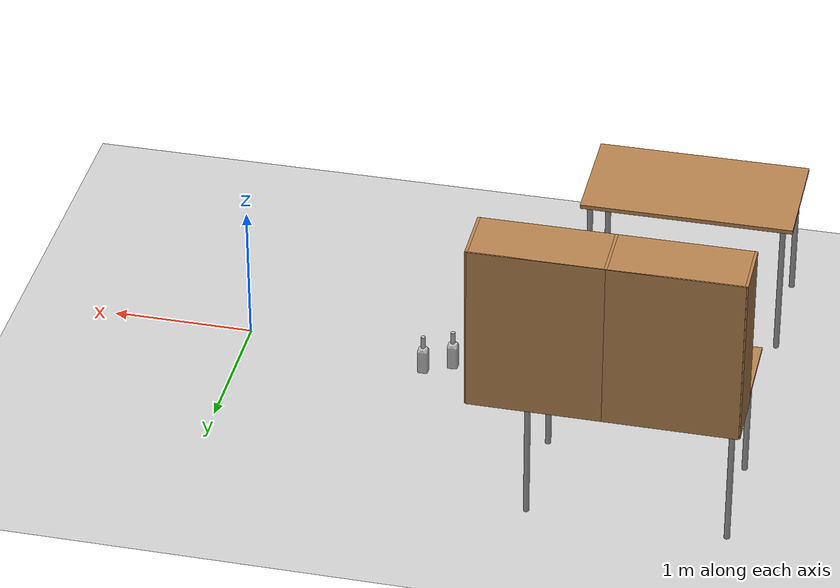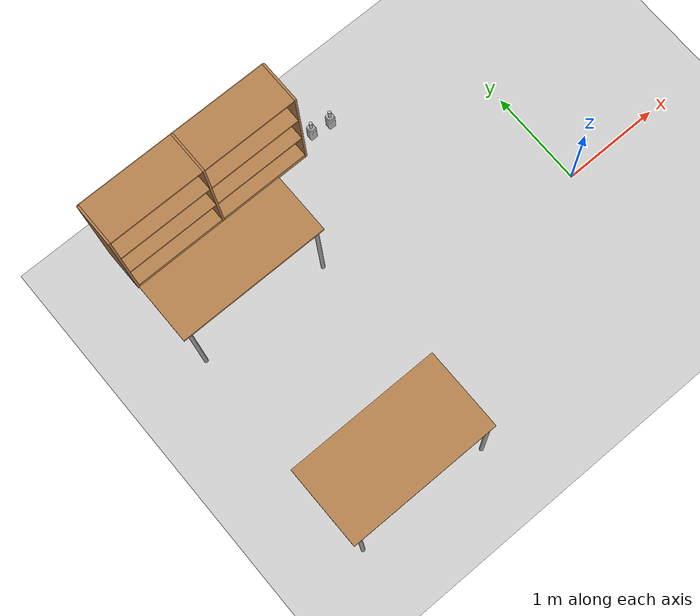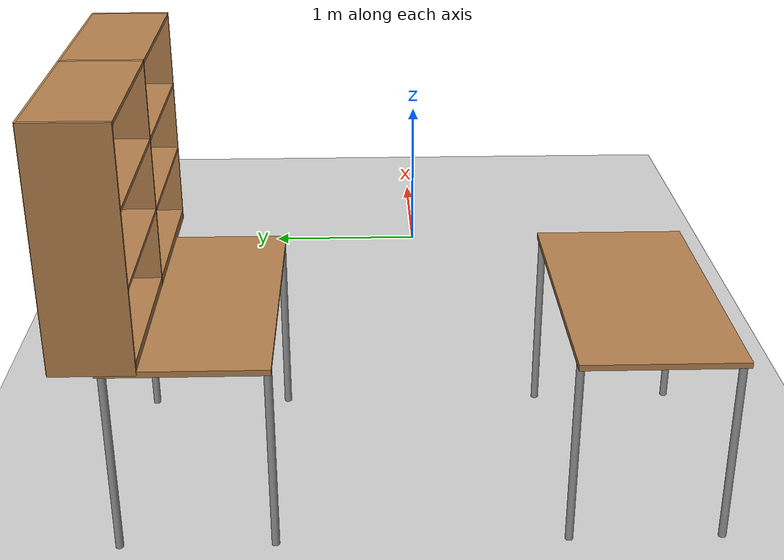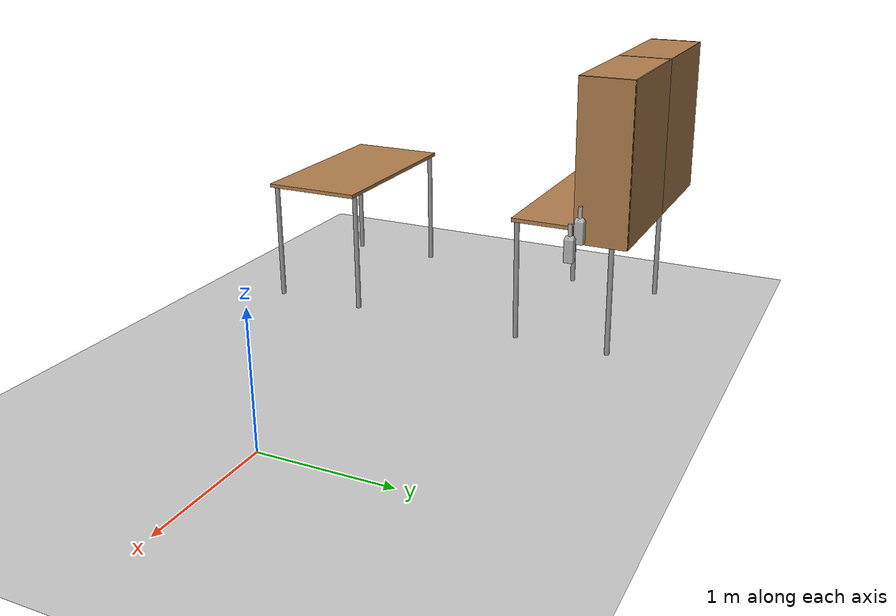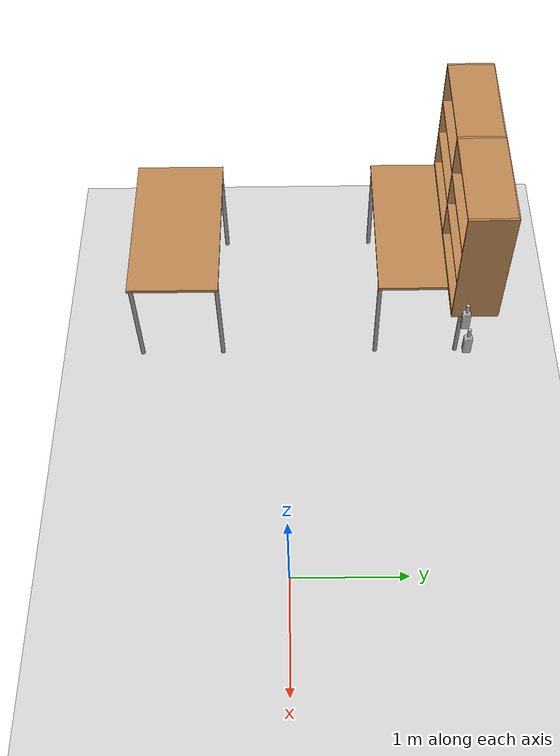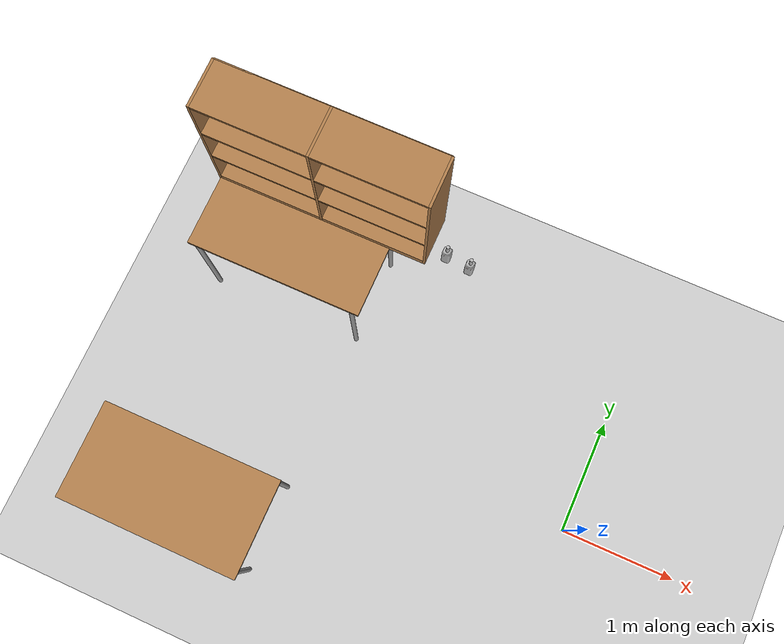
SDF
<sdf version="1.6">
 <world name="default">
  <model name="ground_plane">
   <static>1</static>
   <link name="link">
    <collision name="collision">
     <geometry><plane><normal>0 0 1</normal><size>100 100</size></plane></geometry>
     <surface>
      <contact><collide_bitmask>65535</collide_bitmask></contact>
      <friction><ode><mu>100</mu><mu2>50</mu2></ode></friction>
     </surface>
    </collision>
    <visual name="visual">
     <cast_shadows>0</cast_shadows>
     <geometry><plane><normal>0 0 1</normal><size>100 100</size></plane></geometry>
     <material>
      <script><uri>file://media/materials/scripts/gazebo.material</uri><name>Gazebo/Grey</name></script>
     </material>
    </visual>
   </link>
  </model>
  <model name="table">
   <static>1</static>
   <link name="link">
    <collision name="surface">
     <pose>0 0 1 0 -0 0</pose>
     <geometry><box><size>1.5 0.8 0.03</size></box></geometry>
     <surface><friction><ode><mu>0.6</mu><mu2>0.6</mu2></ode></friction></surface>
    </collision>
    <visual name="visual1">
     <pose>0 0 1 0 -0 0</pose>
     <geometry><box><size>1.5 0.8 0.03</size></box></geometry>
     <material>
      <script><uri>file://media/materials/scripts/gazebo.material</uri><name>Gazebo/Wood</name></script>
     </material>
    </visual>
    <collision name="front_left_leg">
     <pose>0.68 0.38 0.5 0 -0 0</pose>
     <geometry><cylinder><radius>0.02</radius><length>1</length></cylinder></geometry>
    </collision>
    <visual name="front_left_leg">
     <pose>0.68 0.38 0.5 0 -0 0</pose>
     <geometry><cylinder><radius>0.02</radius><length>1</length></cylinder></geometry>
     <material>
      <script><uri>file://media/materials/scripts/gazebo.material</uri><name>Gazebo/Grey</name></script>
     </material>
    </visual>
    <collision name="front_right_leg">
     <pose>0.68 -0.38 0.5 0 -0 0</pose>
     <geometry><cylinder><radius>0.02</radius><length>1</length></cylinder></geometry>
    </collision>
    <visual name="front_right_leg">
     <pose>0.68 -0.38 0.5 0 -0 0</pose>
     <geometry><cylinder><radius>0.02</radius><length>1</length></cylinder></geometry>
     <material>
      <script><uri>file://media/materials/scripts/gazebo.material</uri><name>Gazebo/Grey</name></script>
     </material>
    </visual>
    <collision name="back_right_leg">
     <pose>-0.68 -0.38 0.5 0 -0 0</pose>
     <geometry><cylinder><radius>0.02</radius><length>1</length></cylinder></geometry>
    </collision>
    <visual name="back_right_leg">
     <pose>-0.68 -0.38 0.5 0 -0 0</pose>
     <geometry><cylinder><radius>0.02</radius><length>1</length></cylinder></geometry>
     <material>
      <script><uri>file://media/materials/scripts/gazebo.material</uri><name>Gazebo/Grey</name></script>
     </material>
    </visual>
    <collision name="back_left_leg">
     <pose>-0.68 0.38 0.5 0 -0 0</pose>
     <geometry><cylinder><radius>0.02</radius><length>1</length></cylinder></geometry>
    </collision>
    <visual name="back_left_leg">
     <pose>-0.68 0.38 0.5 0 -0 0</pose>
     <geometry><cylinder><radius>0.02</radius><length>1</length></cylinder></geometry>
     <material>
      <script><uri>file://media/materials/scripts/gazebo.material</uri><name>Gazebo/Grey</name></script>
     </material>
    </visual>
   </link>
   <pose>-3 1.2 0 0 -0 0</pose>
  </model>
  <model name="bookshelf">
   <static>1</static>
   <link name="link">
    <inertial><mass>1</mass></inertial>
    <collision name="back">
     <pose>0 0.005 0.6 0 -0 0</pose>
     <geometry><box><size>0.9 0.01 1.2</size></box></geometry>
    </collision>
    <visual name="visual1">
     <pose>0 0.005 0.6 0 -0 0</pose>
     <geometry><box><size>0.9 0.01 1.2</size></box></geometry>
     <material>
      <script><uri>file://media/materials/scripts/gazebo.material</uri><name>Gazebo/Wood</name></script>
     </material>
    </visual>
    <collision name="left_side">
     <pose>0.45 -0.195 0.6 0 -0 0</pose>
     <geometry><box><size>0.02 0.4 1.2</size></box></geometry>
    </collision>
    <visual name="visual2">
     <pose>0.45 -0.195 0.6 0 -0 0</pose>
     <geometry><box><size>0.02 0.4 1.2</size></box></geometry>
     <material>
      <script><uri>file://media/materials/scripts/gazebo.material</uri><name>Gazebo/Wood</name></script>
     </material>
    </visual>
    <collision name="right_side">
     <pose>-0.45 -0.195 0.6 0 -0 0</pose>
     <geometry><box><size>0.02 0.4 1.2</size></box></geometry>
    </collision>
    <visual name="visual3">
     <pose>-0.45 -0.195 0.6 0 -0 0</pose>
     <geometry><box><size>0.02 0.4 1.2</size></box></geometry>
     <material>
      <script><uri>file://media/materials/scripts/gazebo.material</uri><name>Gazebo/Wood</name></script>
     </material>
    </visual>
    <collision name="bottom">
     <pose>0 -0.195 0.03 0 -0 0</pose>
     <geometry><box><size>0.88 0.4 0.06</size></box></geometry>
    </collision>
    <visual name="visual4">
     <pose>0 -0.195 0.03 0 -0 0</pose>
     <geometry><box><size>0.88 0.4 0.06</size></box></geometry>
     <material>
      <script><uri>file://media/materials/scripts/gazebo.material</uri><name>Gazebo/Wood</name></script>
     </material>
    </visual>
    <collision name="top">
     <pose>0 -0.195 1.19 0 -0 0</pose>
     <geometry><box><size>0.88 0.4 0.02</size></box></geometry>
    </collision>
    <visual name="visual5">
     <pose>0 -0.195 1.19 0 -0 0</pose>
     <geometry><box><size>0.88 0.4 0.02</size></box></geometry>
     <material>
      <script><uri>file://media/materials/scripts/gazebo.material</uri><name>Gazebo/Wood</name></script>
     </material>
    </visual>
    <collision name="low_shelf">
     <pose>0 -0.195 0.43 0 -0 0</pose>
     <geometry><box><size>0.88 0.4 0.02</size></box></geometry>
    </collision>
    <visual name="visual6">
     <pose>0 -0.195 0.43 0 -0 0</pose>
     <geometry><box><size>0.88 0.4 0.02</size></box></geometry>
     <material>
      <script><uri>file://media/materials/scripts/gazebo.material</uri><name>Gazebo/Wood</name></script>
     </material>
    </visual>
    <collision name="high_shelf">
     <pose>0 -0.195 0.8 0 -0 0</pose>
     <geometry><box><size>0.88 0.4 0.02</size></box></geometry>
    </collision>
    <visual name="visual7">
     <pose>0 -0.195 0.8 0 -0 0</pose>
     <geometry><box><size>0.88 0.4 0.02</size></box></geometry>
     <material>
      <script><uri>file://media/materials/scripts/gazebo.material</uri><name>Gazebo/Wood</name></script>
     </material>
    </visual>
   </link>
   <pose>-3.3 1.8 1 0 -0 0</pose>
  </model>
  <model name="bookshelf_clone">
   <static>1</static>
   <link name="link">
    <inertial><mass>1</mass></inertial>
    <collision name="back">
     <pose>0 0.005 0.6 0 -0 0</pose>
     <geometry><box><size>0.9 0.01 1.2</size></box></geometry>
    </collision>
    <visual name="visual1">
     <pose>0 0.005 0.6 0 -0 0</pose>
     <geometry><box><size>0.9 0.01 1.2</size></box></geometry>
     <material>
      <script><uri>file://media/materials/scripts/gazebo.material</uri><name>Gazebo/Wood</name></script>
     </material>
    </visual>
    <collision name="left_side">
     <pose>0.45 -0.195 0.6 0 -0 0</pose>
     <geometry><box><size>0.02 0.4 1.2</size></box></geometry>
    </collision>
    <visual name="visual2">
     <pose>0.45 -0.195 0.6 0 -0 0</pose>
     <geometry><box><size>0.02 0.4 1.2</size></box></geometry>
     <material>
      <script><uri>file://media/materials/scripts/gazebo.material</uri><name>Gazebo/Wood</name></script>
     </material>
    </visual>
    <collision name="right_side">
     <pose>-0.45 -0.195 0.6 0 -0 0</pose>
     <geometry><box><size>0.02 0.4 1.2</size></box></geometry>
    </collision>
    <visual name="visual3">
     <pose>-0.45 -0.195 0.6 0 -0 0</pose>
     <geometry><box><size>0.02 0.4 1.2</size></box></geometry>
     <material>
      <script><uri>file://media/materials/scripts/gazebo.material</uri><name>Gazebo/Wood</name></script>
     </material>
    </visual>
    <collision name="bottom">
     <pose>0 -0.195 0.03 0 -0 0</pose>
     <geometry><box><size>0.88 0.4 0.06</size></box></geometry>
    </collision>
    <visual name="visual4">
     <pose>0 -0.195 0.03 0 -0 0</pose>
     <geometry><box><size>0.88 0.4 0.06</size></box></geometry>
     <material>
      <script><uri>file://media/materials/scripts/gazebo.material</uri><name>Gazebo/Wood</name></script>
     </material>
    </visual>
    <collision name="top">
     <pose>0 -0.195 1.19 0 -0 0</pose>
     <geometry><box><size>0.88 0.4 0.02</size></box></geometry>
    </collision>
    <visual name="visual5">
     <pose>0 -0.195 1.19 0 -0 0</pose>
     <geometry><box><size>0.88 0.4 0.02</size></box></geometry>
     <material>
      <script><uri>file://media/materials/scripts/gazebo.material</uri><name>Gazebo/Wood</name></script>
     </material>
    </visual>
    <collision name="low_shelf">
     <pose>0 -0.195 0.43 0 -0 0</pose>
     <geometry><box><size>0.88 0.4 0.02</size></box></geometry>
    </collision>
    <visual name="visual6">
     <pose>0 -0.195 0.43 0 -0 0</pose>
     <geometry><box><size>0.88 0.4 0.02</size></box></geometry>
     <material>
      <script><uri>file://media/materials/scripts/gazebo.material</uri><name>Gazebo/Wood</name></script>
     </material>
    </visual>
    <collision name="high_shelf">
     <pose>0 -0.195 0.8 0 -0 0</pose>
     <geometry><box><size>0.88 0.4 0.02</size></box></geometry>
    </collision>
    <visual name="visual7">
     <pose>0 -0.195 0.8 0 -0 0</pose>
     <geometry><box><size>0.88 0.4 0.02</size></box></geometry>
     <material>
      <script><uri>file://media/materials/scripts/gazebo.material</uri><name>Gazebo/Wood</name></script>
     </material>
    </visual>
   </link>
   <pose>-2.4 1.8 1 0 -0 0</pose>
  </model>
  <model name="table_0">
   <static>1</static>
   <link name="link">
    <collision name="surface">
     <pose>0 0 1 0 -0 0</pose>
     <geometry><box><size>1.5 0.8 0.03</size></box></geometry>
     <surface><friction><ode><mu>0.6</mu><mu2>0.6</mu2></ode></friction></surface>
    </collision>
    <visual name="visual1">
     <pose>0 0 1 0 -0 0</pose>
     <geometry><box><size>1.5 0.8 0.03</size></box></geometry>
     <material>
      <script><uri>file://media/materials/scripts/gazebo.material</uri><name>Gazebo/Wood</name></script>
     </material>
    </visual>
    <collision name="front_left_leg">
     <pose>0.68 0.38 0.5 0 -0 0</pose>
     <geometry><cylinder><radius>0.02</radius><length>1</length></cylinder></geometry>
    </collision>
    <visual name="front_left_leg">
     <pose>0.68 0.38 0.5 0 -0 0</pose>
     <geometry><cylinder><radius>0.02</radius><length>1</length></cylinder></geometry>
     <material>
      <script><uri>file://media/materials/scripts/gazebo.material</uri><name>Gazebo/Grey</name></script>
     </material>
    </visual>
    <collision name="front_right_leg">
     <pose>0.68 -0.38 0.5 0 -0 0</pose>
     <geometry><cylinder><radius>0.02</radius><length>1</length></cylinder></geometry>
    </collision>
    <visual name="front_right_leg">
     <pose>0.68 -0.38 0.5 0 -0 0</pose>
     <geometry><cylinder><radius>0.02</radius><length>1</length></cylinder></geometry>
     <material>
      <script><uri>file://media/materials/scripts/gazebo.material</uri><name>Gazebo/Grey</name></script>
     </material>
    </visual>
    <collision name="back_right_leg">
     <pose>-0.68 -0.38 0.5 0 -0 0</pose>
     <geometry><cylinder><radius>0.02</radius><length>1</length></cylinder></geometry>
    </collision>
    <visual name="back_right_leg">
     <pose>-0.68 -0.38 0.5 0 -0 0</pose>
     <geometry><cylinder><radius>0.02</radius><length>1</length></cylinder></geometry>
     <material>
      <script><uri>file://media/materials/scripts/gazebo.material</uri><name>Gazebo/Grey</name></script>
     </material>
    </visual>
    <collision name="back_left_leg">
     <pose>-0.68 0.38 0.5 0 -0 0</pose>
     <geometry><cylinder><radius>0.02</radius><length>1</length></cylinder></geometry>
    </collision>
    <visual name="back_left_leg">
     <pose>-0.68 0.38 0.5 0 -0 0</pose>
     <geometry><cylinder><radius>0.02</radius><length>1</length></cylinder></geometry>
     <material>
      <script><uri>file://media/materials/scripts/gazebo.material</uri><name>Gazebo/Grey</name></script>
     </material>
    </visual>
   </link>
   <pose>-3 -1 0 0 -0 0</pose>
  </model>
  <model name="vodka">
   <link name="link">
    <inertial>
     <mass>0.1</mass>
     <inertia><ixx>5.8e-05</ixx><ixy>0</ixy><ixz>0</ixz><iyy>5.8e-05</iyy><iyz>0</iyz><izz>1.9e-05</izz></inertia>
    </inertial>
    <visual name="visual"><geometry><mesh><uri>model://vodka/vodka.dae</uri></mesh></geometry></visual>
    <collision name="collision">
     <pose>0 0 0.135 0 -0 0</pose>
     <geometry><box><size>0.07 0.07 0.27</size></box></geometry>
    </collision>
   </link>
   <pose>-1.8 1.5 1.06 0 0 -3.14119</pose>
  </model>
  <model name="campari">
   <link name="link">
    <inertial>
     <pose>0 0 0.0675 0 -0 0</pose>
     <mass>0.001</mass>
     <inertia><ixx>0</ixx><ixy>0</ixy><ixz>0</ixz><iyy>0</iyy><iyz>0</iyz><izz>0</izz></inertia>
    </inertial>
    <visual name="visual">
     <pose>0 0 -0.0675 0 -0 0</pose>
     <geometry><mesh><uri>model://campari/campari.dae</uri></mesh></geometry>
    </visual>
    <collision name="collision">
     <pose>0 0 0.0675 0 -0 0</pose>
     <geometry><box><size>0.07 0.07 0.27</size></box></geometry>
    </collision>
   </link>
   <pose>-1.6 1.5 1.06 0 0 -3.14119</pose>
  </model>
 </world>
</sdf>
